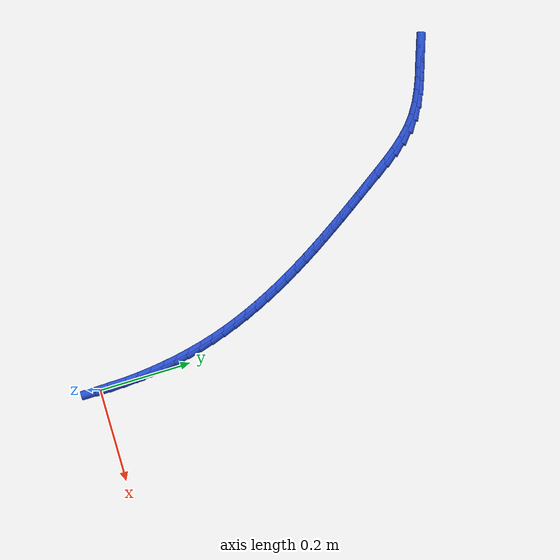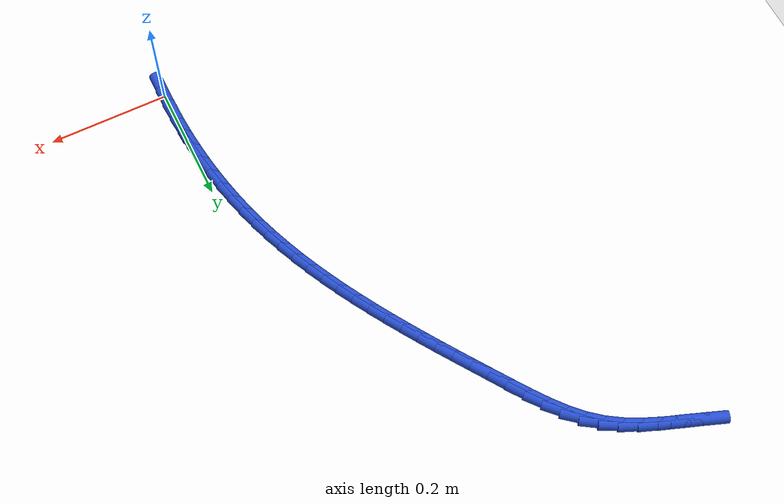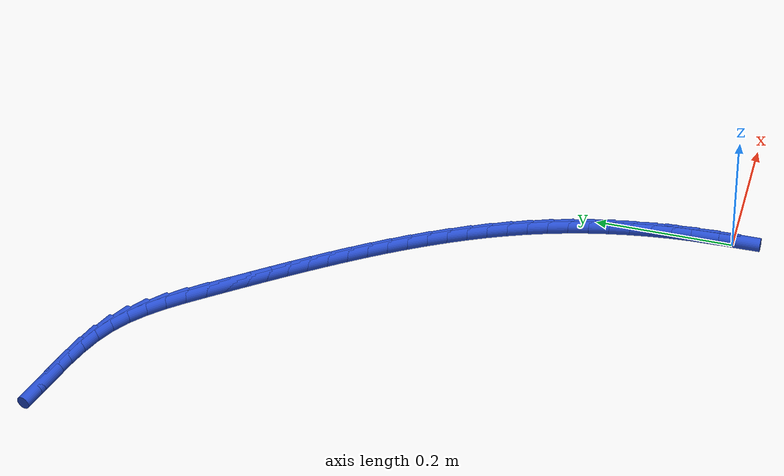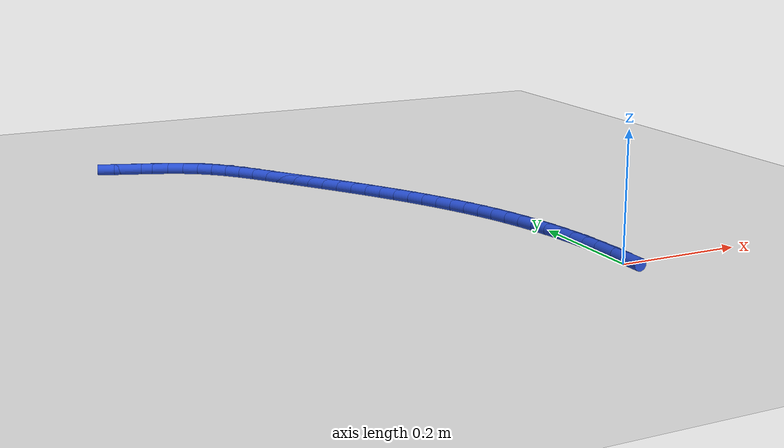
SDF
<sdf version="1.6">
 <world name="default">
  <model name="ground_plane">
   <static>1</static>
   <link name="link">
    <collision name="collision">
     <geometry><plane><normal>0 0 1</normal><size>100 100</size></plane></geometry>
     <surface><friction><ode><mu>100</mu><mu2>50</mu2></ode></friction></surface>
    </collision>
    <visual name="visual">
     <cast_shadows>0</cast_shadows>
     <geometry><plane><normal>0 0 1</normal><size>100 100</size></plane></geometry>
     <material>
      <script><uri>file://media/materials/scripts/gazebo.material</uri><name>Gazebo/WhiteGlow</name></script>
     </material>
    </visual>
   </link>
  </model>
  <model name="line">
   <link name="link_0">
    <pose>-6.071532165918825e-18 9.020562075079397e-17 0.01 0 1.57 -1.5642609833262457</pose>
    <collision name="collision">
     <geometry><cylinder><radius>0.01</radius><length>0.08</length></cylinder></geometry>
    </collision>
    <visual name="visual">
     <material>
      <script><name>Gazebo/Blue</name><uri>file://media/materials/scripts/gazebo.material</uri></script>
     </material>
     <geometry><cylinder><radius>0.01</radius><length>0.08</length></cylinder></geometry>
    </visual>
   </link>
   <link name="link_1">
    <pose>-0.00019538533817303858 0.02989629503328875 0.01 0 1.57 -1.533442080625066</pose>
    <collision name="collision">
     <geometry><cylinder><radius>0.01</radius><length>0.08</length></cylinder></geometry>
    </collision>
    <visual name="visual">
     <material>
      <script><name>Gazebo/Blue</name><uri>file://media/materials/scripts/gazebo.material</uri></script>
     </material>
     <geometry><cylinder><radius>0.01</radius><length>0.08</length></cylinder></geometry>
    </visual>
   </link>
   <link name="link_2">
    <pose>-0.001314598239402544 0.05984449120298663 0.01 0 1.57 -1.5023022908751729</pose>
    <collision name="collision">
     <geometry><cylinder><radius>0.01</radius><length>0.08</length></cylinder></geometry>
    </collision>
    <visual name="visual">
     <material>
      <script><name>Gazebo/Blue</name><uri>file://media/materials/scripts/gazebo.material</uri></script>
     </material>
     <geometry><cylinder><radius>0.01</radius><length>0.08</length></cylinder></geometry>
    </visual>
   </link>
   <link name="link_3">
    <pose>-0.003368566965591087 0.08978513749059894 0.01 0 1.57 -1.4707204219598675</pose>
    <collision name="collision">
     <geometry><cylinder><radius>0.01</radius><length>0.08</length></cylinder></geometry>
    </collision>
    <visual name="visual">
     <material>
      <script><name>Gazebo/Blue</name><uri>file://media/materials/scripts/gazebo.material</uri></script>
     </material>
     <geometry><cylinder><radius>0.01</radius><length>0.08</length></cylinder></geometry>
    </visual>
   </link>
   <link name="link_4">
    <pose>-0.006368219778641236 0.11965878287763072 0.01 0 1.57 -1.438576005103352</pose>
    <collision name="collision">
     <geometry><cylinder><radius>0.01</radius><length>0.08</length></cylinder></geometry>
    </collision>
    <visual name="visual">
     <material>
      <script><name>Gazebo/Blue</name><uri>file://media/materials/scripts/gazebo.material</uri></script>
     </material>
     <geometry><cylinder><radius>0.01</radius><length>0.08</length></cylinder></geometry>
    </visual>
   </link>
   <link name="link_5">
    <pose>-0.010324484940455559 0.1494059763455871 0.01 0 1.57 -1.4057488932148994</pose>
    <collision name="collision">
     <geometry><cylinder><radius>0.01</radius><length>0.08</length></cylinder></geometry>
    </collision>
    <visual name="visual">
     <material>
      <script><name>Gazebo/Blue</name><uri>file://media/materials/scripts/gazebo.material</uri></script>
     </material>
     <geometry><cylinder><radius>0.01</radius><length>0.08</length></cylinder></geometry>
    </visual>
   </link>
   <link name="link_6">
    <pose>-0.015248290712936626 0.1789672668759733 0.01 0 1.57 -1.3721190641973917</pose>
    <collision name="collision">
     <geometry><cylinder><radius>0.01</radius><length>0.08</length></cylinder></geometry>
    </collision>
    <visual name="visual">
     <material>
      <script><name>Gazebo/Blue</name><uri>file://media/materials/scripts/gazebo.material</uri></script>
     </material>
     <geometry><cylinder><radius>0.01</radius><length>0.08</length></cylinder></geometry>
    </visual>
   </link>
   <link name="link_7">
    <pose>-0.021150565357986997 0.2082832034502943 0.01 0 1.57 -1.3375666687550478</pose>
    <collision name="collision">
     <geometry><cylinder><radius>0.01</radius><length>0.08</length></cylinder></geometry>
    </collision>
    <visual name="visual">
     <material>
      <script><name>Gazebo/Blue</name><uri>file://media/materials/scripts/gazebo.material</uri></script>
     </material>
     <geometry><cylinder><radius>0.01</radius><length>0.08</length></cylinder></geometry>
    </visual>
   </link>
   <link name="link_8">
    <pose>-0.028042237137509238 0.23729433505005518 0.01 0 1.57 -1.3019723716880667</pose>
    <collision name="collision">
     <geometry><cylinder><radius>0.01</radius><length>0.08</length></cylinder></geometry>
    </collision>
    <visual name="visual">
     <material>
      <script><name>Gazebo/Blue</name><uri>file://media/materials/scripts/gazebo.material</uri></script>
     </material>
     <geometry><cylinder><radius>0.01</radius><length>0.08</length></cylinder></geometry>
    </visual>
   </link>
   <link name="link_9">
    <pose>-0.03593423431340593 0.2659412106567612 0.01 0 1.57 -1.2655545698948552</pose>
    <collision name="collision">
     <geometry><cylinder><radius>0.01</radius><length>0.08</length></cylinder></geometry>
    </collision>
    <visual name="visual">
     <material>
      <script><name>Gazebo/Blue</name><uri>file://media/materials/scripts/gazebo.material</uri></script>
     </material>
     <geometry><cylinder><radius>0.01</radius><length>0.08</length></cylinder></geometry>
    </visual>
   </link>
   <link name="link_10">
    <pose>-0.044830068911962444 0.29417398166767234 0.01 0 1.57 -1.230315160714265</pose>
    <collision name="collision">
     <geometry><cylinder><radius>0.01</radius><length>0.08</length></cylinder></geometry>
    </collision>
    <visual name="visual">
     <material>
      <script><name>Gazebo/Blue</name><uri>file://media/materials/scripts/gazebo.material</uri></script>
     </material>
     <geometry><cylinder><radius>0.01</radius><length>0.08</length></cylinder></geometry>
    </visual>
   </link>
   <link name="link_11">
    <pose>-0.05468849212050699 0.3220007550531169 0.01 0 1.57 -1.1971280903031472</pose>
    <collision name="collision">
     <geometry><cylinder><radius>0.01</radius><length>0.08</length></cylinder></geometry>
    </collision>
    <visual name="visual">
     <material>
      <script><name>Gazebo/Blue</name><uri>file://media/materials/scripts/gazebo.material</uri></script>
     </material>
     <geometry><cylinder><radius>0.01</radius><length>0.08</length></cylinder></geometry>
    </visual>
   </link>
   <link name="link_12">
    <pose>-0.06545154566685278 0.3494512729074383 0.01 0 1.57 -1.166101578099795</pose>
    <collision name="collision">
     <geometry><cylinder><radius>0.01</radius><length>0.08</length></cylinder></geometry>
    </collision>
    <visual name="visual">
     <material>
      <script><name>Gazebo/Blue</name><uri>file://media/materials/scripts/gazebo.material</uri></script>
     </material>
     <geometry><cylinder><radius>0.01</radius><length>0.08</length></cylinder></geometry>
    </visual>
   </link>
   <link name="link_13">
    <pose>-0.07706124258835327 0.3765553144728994 0.01 0 1.57 -1.1373130696278033</pose>
    <collision name="collision">
     <geometry><cylinder><radius>0.01</radius><length>0.08</length></cylinder></geometry>
    </collision>
    <visual name="visual">
     <material>
      <script><name>Gazebo/Blue</name><uri>file://media/materials/scripts/gazebo.material</uri></script>
     </material>
     <geometry><cylinder><radius>0.01</radius><length>0.08</length></cylinder></geometry>
    </visual>
   </link>
   <link name="link_14">
    <pose>-0.08945959592236201 0.40334265899176297 0.01 0 1.57 -1.110813930483149</pose>
    <collision name="collision">
     <geometry><cylinder><radius>0.01</radius><length>0.08</length></cylinder></geometry>
    </collision>
    <visual name="visual">
     <material>
      <script><name>Gazebo/Blue</name><uri>file://media/materials/scripts/gazebo.material</uri></script>
     </material>
     <geometry><cylinder><radius>0.01</radius><length>0.08</length></cylinder></geometry>
    </visual>
   </link>
   <link name="link_15">
    <pose>-0.10258861870623243 0.4298430857062916 0.01 0 1.57 -1.0866333033812545</pose>
    <collision name="collision">
     <geometry><cylinder><radius>0.01</radius><length>0.08</length></cylinder></geometry>
    </collision>
    <visual name="visual">
     <material>
      <script><name>Gazebo/Blue</name><uri>file://media/materials/scripts/gazebo.material</uri></script>
     </material>
     <geometry><cylinder><radius>0.01</radius><length>0.08</length></cylinder></geometry>
    </visual>
   </link>
   <link name="link_16">
    <pose>-0.11639032397731805 0.456086373858748 0.01 0 1.57 -1.0647821116608314</pose>
    <collision name="collision">
     <geometry><cylinder><radius>0.01</radius><length>0.08</length></cylinder></geometry>
    </collision>
    <visual name="visual">
     <material>
      <script><name>Gazebo/Blue</name><uri>file://media/materials/scripts/gazebo.material</uri></script>
     </material>
     <geometry><cylinder><radius>0.01</radius><length>0.08</length></cylinder></geometry>
    </visual>
   </link>
   <link name="link_17">
    <pose>-0.13080672477297237 0.4821023026913951 0.01 0 1.57 -1.0452569621738448</pose>
    <collision name="collision">
     <geometry><cylinder><radius>0.01</radius><length>0.08</length></cylinder></geometry>
    </collision>
    <visual name="visual">
     <material>
      <script><name>Gazebo/Blue</name><uri>file://media/materials/scripts/gazebo.material</uri></script>
     </material>
     <geometry><cylinder><radius>0.01</radius><length>0.08</length></cylinder></geometry>
    </visual>
   </link>
   <link name="link_18">
    <pose>-0.14577983413054885 0.5079206514464956 0.01 0 1.57 -1.0280437732857843</pose>
    <collision name="collision">
     <geometry><cylinder><radius>0.01</radius><length>0.08</length></cylinder></geometry>
    </collision>
    <visual name="visual">
     <material>
      <script><name>Gazebo/Blue</name><uri>file://media/materials/scripts/gazebo.material</uri></script>
     </material>
     <geometry><cylinder><radius>0.01</radius><length>0.08</length></cylinder></geometry>
    </visual>
   </link>
   <link name="link_19">
    <pose>-0.16125166508740094 0.533571199366312 0.01 0 1.57 -1.0131210190796889</pose>
    <collision name="collision">
     <geometry><cylinder><radius>0.01</radius><length>0.08</length></cylinder></geometry>
    </collision>
    <visual name="visual">
     <material>
      <script><name>Gazebo/Blue</name><uri>file://media/materials/scripts/gazebo.material</uri></script>
     </material>
     <geometry><cylinder><radius>0.01</radius><length>0.08</length></cylinder></geometry>
    </visual>
   </link>
   <link name="link_20">
    <pose>-0.17716423068088227 0.5590837256931075 0.01 0 1.57 -1.00046253402051</pose>
    <collision name="collision">
     <geometry><cylinder><radius>0.01</radius><length>0.08</length></cylinder></geometry>
    </collision>
    <visual name="visual">
     <material>
      <script><name>Gazebo/Blue</name><uri>file://media/materials/scripts/gazebo.material</uri></script>
     </material>
     <geometry><cylinder><radius>0.01</radius><length>0.08</length></cylinder></geometry>
    </visual>
   </link>
   <link name="link_21">
    <pose>-0.19345954394834622 0.5844880096691445 0.01 0 1.57 -0.9900398618783286</pose>
    <collision name="collision">
     <geometry><cylinder><radius>0.01</radius><length>0.08</length></cylinder></geometry>
    </collision>
    <visual name="visual">
     <material>
      <script><name>Gazebo/Blue</name><uri>file://media/materials/scripts/gazebo.material</uri></script>
     </material>
     <geometry><cylinder><radius>0.01</radius><length>0.08</length></cylinder></geometry>
    </visual>
   </link>
   <link name="link_22">
    <pose>-0.21007961792714636 0.6098138305366858 0.01 0 1.57 -0.9818241594196397</pose>
    <collision name="collision">
     <geometry><cylinder><radius>0.01</radius><length>0.08</length></cylinder></geometry>
    </collision>
    <visual name="visual">
     <material>
      <script><name>Gazebo/Blue</name><uri>file://media/materials/scripts/gazebo.material</uri></script>
     </material>
     <geometry><cylinder><radius>0.01</radius><length>0.08</length></cylinder></geometry>
    </visual>
   </link>
   <link name="link_23">
    <pose>-0.22696646565463602 0.6350909675379942 0.01 0 1.57 -0.9757876812215632</pose>
    <collision name="collision">
     <geometry><cylinder><radius>0.01</radius><length>0.08</length></cylinder></geometry>
    </collision>
    <visual name="visual">
     <material>
      <script><name>Gazebo/Blue</name><uri>file://media/materials/scripts/gazebo.material</uri></script>
     </material>
     <geometry><cylinder><radius>0.01</radius><length>0.08</length></cylinder></geometry>
    </visual>
   </link>
   <link name="link_24">
    <pose>-0.24406210016816893 0.6603491999153326 0.01 0 1.57 -0.9719048793293218</pose>
    <collision name="collision">
     <geometry><cylinder><radius>0.01</radius><length>0.08</length></cylinder></geometry>
    </collision>
    <visual name="visual">
     <material>
      <script><name>Gazebo/Blue</name><uri>file://media/materials/scripts/gazebo.material</uri></script>
     </material>
     <geometry><cylinder><radius>0.01</radius><length>0.08</length></cylinder></geometry>
    </visual>
   </link>
   <link name="link_25">
    <pose>-0.26130853450509817 0.6856183069109629 0.01 0 1.57 -0.9700452745738253</pose>
    <collision name="collision">
     <geometry><cylinder><radius>0.01</radius><length>0.08</length></cylinder></geometry>
    </collision>
    <visual name="visual">
     <material>
      <script><name>Gazebo/Blue</name><uri>file://media/materials/scripts/gazebo.material</uri></script>
     </material>
     <geometry><cylinder><radius>0.01</radius><length>0.08</length></cylinder></geometry>
    </visual>
   </link>
   <link name="link_26">
    <pose>-0.27864981983011977 0.7109251870233977 0.01 0 1.57 -0.9614957935794757</pose>
    <collision name="collision">
     <geometry><cylinder><radius>0.01</radius><length>0.08</length></cylinder></geometry>
    </collision>
    <visual name="visual">
     <material>
      <script><name>Gazebo/Blue</name><uri>file://media/materials/scripts/gazebo.material</uri></script>
     </material>
     <geometry><cylinder><radius>0.01</radius><length>0.08</length></cylinder></geometry>
    </visual>
   </link>
   <link name="link_27">
    <pose>-0.2961941565231202 0.7360647258556623 0.01 0 1.57 -0.9309521675213168</pose>
    <collision name="collision">
     <geometry><cylinder><radius>0.01</radius><length>0.08</length></cylinder></geometry>
    </collision>
    <visual name="visual">
     <material>
      <script><name>Gazebo/Blue</name><uri>file://media/materials/scripts/gazebo.material</uri></script>
     </material>
     <geometry><cylinder><radius>0.01</radius><length>0.08</length></cylinder></geometry>
    </visual>
   </link>
   <link name="link_28">
    <pose>-0.3143317075412472 0.7604332755551562 0.01 0 1.57 -0.8755480288631161</pose>
    <collision name="collision">
     <geometry><cylinder><radius>0.01</radius><length>0.08</length></cylinder></geometry>
    </collision>
    <visual name="visual">
     <material>
      <script><name>Gazebo/Blue</name><uri>file://media/materials/scripts/gazebo.material</uri></script>
     </material>
     <geometry><cylinder><radius>0.01</radius><length>0.08</length></cylinder></geometry>
    </visual>
   </link>
   <link name="link_29">
    <pose>-0.3334804207619129 0.7833879163190962 0.01 0 1.57 -0.793113111554915</pose>
    <collision name="collision">
     <geometry><cylinder><radius>0.01</radius><length>0.08</length></cylinder></geometry>
    </collision>
    <visual name="visual">
     <material>
      <script><name>Gazebo/Blue</name><uri>file://media/materials/scripts/gazebo.material</uri></script>
     </material>
     <geometry><cylinder><radius>0.01</radius><length>0.08</length></cylinder></geometry>
    </visual>
   </link>
   <link name="link_30">
    <pose>-0.35405824406252967 0.8042857283446996 0.01 0 1.57 -0.6818845650359583</pose>
    <collision name="collision">
     <geometry><cylinder><radius>0.01</radius><length>0.08</length></cylinder></geometry>
    </collision>
    <visual name="visual">
     <material>
      <script><name>Gazebo/Blue</name><uri>file://media/materials/scripts/gazebo.material</uri></script>
     </material>
     <geometry><cylinder><radius>0.01</radius><length>0.08</length></cylinder></geometry>
    </visual>
   </link>
   <link name="link_31">
    <pose>-0.3764806287589229 0.8224878408759467 0.01 0 1.57 -0.5596379906452319</pose>
    <collision name="collision">
     <geometry><cylinder><radius>0.01</radius><length>0.08</length></cylinder></geometry>
    </collision>
    <visual name="visual">
     <material>
      <script><name>Gazebo/Blue</name><uri>file://media/materials/scripts/gazebo.material</uri></script>
     </material>
     <geometry><cylinder><radius>0.01</radius><length>0.08</length></cylinder></geometry>
    </visual>
   </link>
   <link name="link_32">
    <pose>-0.400898545392823 0.8377843311258923 0.01 0 1.57 -0.46205582248289456</pose>
    <collision name="collision">
     <geometry><cylinder><radius>0.01</radius><length>0.08</length></cylinder></geometry>
    </collision>
    <visual name="visual">
     <material>
      <script><name>Gazebo/Blue</name><uri>file://media/materials/scripts/gazebo.material</uri></script>
     </material>
     <geometry><cylinder><radius>0.01</radius><length>0.08</length></cylinder></geometry>
    </visual>
   </link>
   <link name="link_33">
    <pose>-0.426968380112761 0.8507674176795854 0.01 0 1.57 -0.3936970724352948</pose>
    <collision name="collision">
     <geometry><cylinder><radius>0.01</radius><length>0.08</length></cylinder></geometry>
    </collision>
    <visual name="visual">
     <material>
      <script><name>Gazebo/Blue</name><uri>file://media/materials/scripts/gazebo.material</uri></script>
     </material>
     <geometry><cylinder><radius>0.01</radius><length>0.08</length></cylinder></geometry>
    </visual>
   </link>
   <link name="link_34">
    <pose>-0.4542922693412246 0.8621173040044866 0.01 0 1.57 -0.3534513228596217</pose>
    <collision name="collision">
     <geometry><cylinder><radius>0.01</radius><length>0.08</length></cylinder></geometry>
    </collision>
    <visual name="visual">
     <material>
      <script><name>Gazebo/Blue</name><uri>file://media/materials/scripts/gazebo.material</uri></script>
     </material>
     <geometry><cylinder><radius>0.01</radius><length>0.08</length></cylinder></geometry>
    </visual>
   </link>
   <link name="link_35">
    <pose>-0.48247234950070156 0.8725141935680573 0.01 0 1.57 -0.33980246243570883</pose>
    <collision name="collision">
     <geometry><cylinder><radius>0.01</radius><length>0.08</length></cylinder></geometry>
    </collision>
    <visual name="visual">
     <material>
      <script><name>Gazebo/Blue</name><uri>file://media/materials/scripts/gazebo.material</uri></script>
     </material>
     <geometry><cylinder><radius>0.01</radius><length>0.08</length></cylinder></geometry>
    </visual>
   </link>
   <link name="link_36">
    <pose>-0.5111107570136796 0.8826382898377585 0.01 0 1.57 -0.35170851816649323</pose>
    <collision name="collision">
     <geometry><cylinder><radius>0.01</radius><length>0.08</length></cylinder></geometry>
    </collision>
    <visual name="visual">
     <material>
      <script><name>Gazebo/Blue</name><uri>file://media/materials/scripts/gazebo.material</uri></script>
     </material>
     <geometry><cylinder><radius>0.01</radius><length>0.08</length></cylinder></geometry>
    </visual>
   </link>
   <link name="link_231">
    <pose>-0.00019804221249862877 0.02990848373974518 0.01 0 1.57 -1.5329297280454206</pose>
    <collision name="collision">
     <geometry><cylinder><radius>0.01</radius><length>0.08</length></cylinder></geometry>
    </collision>
    <visual name="visual">
     <material>
      <script><name>Gazebo/Blue</name><uri>file://media/materials/scripts/gazebo.material</uri></script>
     </material>
     <geometry><cylinder><radius>0.01</radius><length>0.08</length></cylinder></geometry>
    </visual>
   </link>
   <link name="link_232">
    <pose>-0.0013358532340072534 0.05994200085464089 0.01 0 1.57 -1.5485142519891368</pose>
    <collision name="collision">
     <geometry><cylinder><radius>0.01</radius><length>0.08</length></cylinder></geometry>
    </collision>
    <visual name="visual">
     <material>
      <script><name>Gazebo/Blue</name><uri>file://media/materials/scripts/gazebo.material</uri></script>
     </material>
     <geometry><cylinder><radius>0.01</radius><length>0.08</length></cylinder></geometry>
    </visual>
   </link>
  </model>
 </world>
</sdf>
